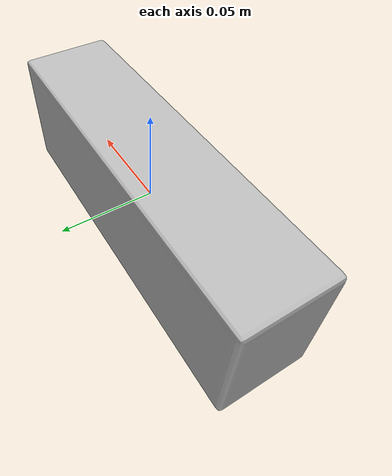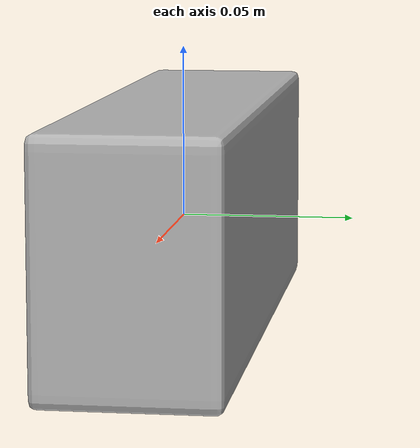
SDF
<?xml version='1.0' encoding='utf-8'?>
<!--
SPDX-FileCopyrightText: Alliander N. V.

SPDX-License-Identifier: Apache-2.0
-->
<sdf version="1.6">
    <model name="brick">
        <pose>0 0 0 1.57079632679 0 0</pose>
        <self_collide>false</self_collide>

        <link name='brick'>
            <collision name="collision">
                <geometry>
                    <mesh>
                        <uri>resources/baksteen_collision.obj</uri>
                    </mesh>
                </geometry>
            </collision>
            <visual name='visual'>
                <geometry>
                    <mesh>
                        <uri>resources/baksteen.obj</uri>
                    </mesh>
                </geometry>
            </visual>
            <inertial>
                <mass>2.5</mass>
                <density>1920</density>
            </inertial>
        </link>
        <static>0</static>
    </model>
</sdf>
